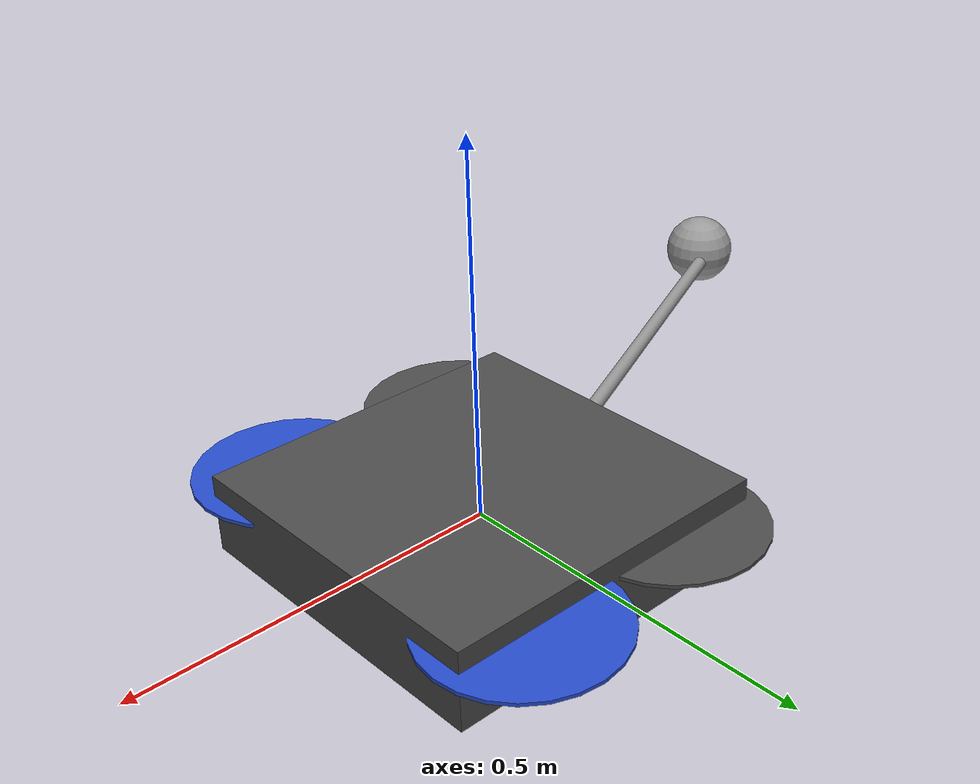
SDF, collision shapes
<?xml version='1.0'?>
<sdf version='1.6'>
  <model name='Iris_modified3'>
    <link name='base_link'>
      <pose frame=''>0 0 0 0 -0 0</pose>
      <inertial>
        <pose frame=''>0 0 0 0 -0 0</pose>
        <mass>1.5</mass>
        <inertia>
          <ixx>0.029125</ixx>
          <ixy>0</ixy>
          <ixz>0</ixz>
          <iyy>0.029125</iyy>
          <iyz>0</iyz>
          <izz>0.055225</izz>
        </inertia>
      </inertial>
      <gravity>1</gravity>
      <velocity_decay/>
      <self_collide>0</self_collide>
      <enable_wind>0</enable_wind>
      <kinematic>0</kinematic>
      <visual name='base_link_inertia_visual'>
        <pose frame=''>0 0 0 0 -0 0</pose>
        <geometry>
          <mesh>
            <scale>1 1 1</scale>
            <uri>model://rotors_description/meshes/iris.stl</uri>
          </mesh>
        </geometry>
        <material>
          <script>
            <name>Gazebo/DarkGrey</name>
            <uri>file://media/materials/scripts/gazebo.material</uri>
          </script>
          <shader type='pixel'/>
          <emissive>0 0 0 1</emissive>
        </material>
        <transparency>0</transparency>
        <cast_shadows>1</cast_shadows>
      </visual>
      <collision name='base_link_inertia_collision'>
        <laser_retro>0</laser_retro>
        <max_contacts>10</max_contacts>
        <pose frame=''>0 0 0 0 -0 0</pose>
        <geometry>
          <box>
            <size>0.47 0.47 0.11</size>
          </box>
        </geometry>
        <surface>
          <friction>
            <ode>
              <mu>1</mu>
              <mu2>1</mu2>
              <fdir1>0 0 0</fdir1>
              <slip1>0</slip1>
              <slip2>0</slip2>
            </ode>
            <torsional>
              <coefficient>1</coefficient>
              <patch_radius>0</patch_radius>
              <surface_radius>0</surface_radius>
              <use_patch_radius>1</use_patch_radius>
              <ode>
                <slip>0</slip>
              </ode>
            </torsional>
          </friction>
          <bounce>
            <restitution_coefficient>0</restitution_coefficient>
            <threshold>1e+06</threshold>
          </bounce>
          <contact>
            <collide_without_contact>0</collide_without_contact>
            <collide_without_contact_bitmask>1</collide_without_contact_bitmask>
            <collide_bitmask>1</collide_bitmask>
            <ode>
              <soft_cfm>0</soft_cfm>
              <soft_erp>0.2</soft_erp>
              <kp>1e+13</kp>
              <kd>1</kd>
              <max_vel>0</max_vel>
              <min_depth>0.001</min_depth>
            </ode>
            <bullet>
              <split_impulse>1</split_impulse>
              <split_impulse_penetration_threshold>-0.01</split_impulse_penetration_threshold>
              <soft_cfm>0</soft_cfm>
              <soft_erp>0.2</soft_erp>
              <kp>1e+13</kp>
              <kd>1</kd>
            </bullet>
          </contact>
        </surface>
      </collision>
    </link>
    <link name='/imu_link'>
      <pose frame=''>0 0 0 0 -0 0</pose>
      <inertial>
        <pose frame=''>0 0 0 0 -0 0</pose>
        <mass>0.015</mass>
        <inertia>
          <ixx>1e-05</ixx>
          <ixy>0</ixy>
          <ixz>0</ixz>
          <iyy>1e-05</iyy>
          <iyz>0</iyz>
          <izz>1e-05</izz>
        </inertia>
      </inertial>
      <self_collide>0</self_collide>
      <enable_wind>0</enable_wind>
      <kinematic>0</kinematic>
    </link>
    <link name='link_0'>
      <inertial>
        <mass>0.000544108</mass>
        <inertia>
          <ixx>4.53608e-05</ixx>
          <ixy>0</ixy>
          <ixz>0</ixz>
          <iyy>4.53608e-05</iyy>
          <iyz>0</iyz>
          <izz>3.69429e-08</izz>
        </inertia>
        <pose frame=''>0 0 0 0 -0 0</pose>
      </inertial>
      <pose frame=''>-0.465305 -0.222957 -0.0836 -1.56756 -0.000351 -1.14</pose>
      <self_collide>0</self_collide>
      <enable_wind>0</enable_wind>
      <kinematic>0</kinematic>
      <visual name='visual'>
        <pose frame=''>0 0 0 0 -0 0</pose>
        <geometry>
          <cylinder>
            <radius>0.0116529</radius>
            <length>1</length>
          </cylinder>
        </geometry>
        <material>
          <lighting>1</lighting>
          <script>
            <uri>file://media/materials/scripts/gazebo.material</uri>
            <name>Gazebo/Grey</name>
          </script>
          <shader type='pixel'/>
          <emissive>0 0 0 1</emissive>
        </material>
        <transparency>0</transparency>
        <cast_shadows>1</cast_shadows>
      </visual>
      <collision name='collision'>
        <laser_retro>0</laser_retro>
        <max_contacts>10</max_contacts>
        <pose frame=''>0 0 0 0 -0 0</pose>
        <geometry>
          <cylinder>
            <radius>0.011653</radius>
            <length>1</length>
          </cylinder>
        </geometry>
        <surface>
          <friction>
            <ode>
              <mu>1</mu>
              <mu2>1</mu2>
              <fdir1>0 0 0</fdir1>
              <slip1>0</slip1>
              <slip2>0</slip2>
            </ode>
            <torsional>
              <coefficient>1</coefficient>
              <patch_radius>0</patch_radius>
              <surface_radius>0</surface_radius>
              <use_patch_radius>1</use_patch_radius>
              <ode>
                <slip>0</slip>
              </ode>
            </torsional>
          </friction>
          <bounce>
            <restitution_coefficient>0</restitution_coefficient>
            <threshold>1e+06</threshold>
          </bounce>
          <contact>
            <collide_without_contact>0</collide_without_contact>
            <collide_without_contact_bitmask>1</collide_without_contact_bitmask>
            <collide_bitmask>1</collide_bitmask>
            <ode>
              <soft_cfm>0</soft_cfm>
              <soft_erp>0.2</soft_erp>
              <kp>1e+13</kp>
              <kd>1</kd>
              <max_vel>0.01</max_vel>
              <min_depth>0</min_depth>
            </ode>
            <bullet>
              <split_impulse>1</split_impulse>
              <split_impulse_penetration_threshold>-0.01</split_impulse_penetration_threshold>
              <soft_cfm>0</soft_cfm>
              <soft_erp>0.2</soft_erp>
              <kp>1e+13</kp>
              <kd>1</kd>
            </bullet>
          </contact>
        </surface>
      </collision>
    </link>
    <link name='link_0_0'>
      <inertial>
        <mass>1</mass>
        <inertia>
          <ixx>2.79074e-06</ixx>
          <ixy>0</ixy>
          <ixz>0</ixz>
          <iyy>2.79074e-06</iyy>
          <iyz>0</iyz>
          <izz>2.79074e-06</izz>
        </inertia>
        <pose frame=''>0 0 0 0 -0 0</pose>
      </inertial>
      <pose frame=''>-0.967895 -0.474964 -0.083915 0.001829 -0.000841 -1.14</pose>
      <visual name='visual'>
        <pose frame=''>0 0 0 0 -0 0</pose>
        <geometry>
          <sphere>
            <radius>0.0613939</radius>
          </sphere>
        </geometry>
        <material>
          <lighting>1</lighting>
          <script>
            <uri>file://media/materials/scripts/gazebo.material</uri>
            <name>Gazebo/Grey</name>
          </script>
          <shader type='pixel'/>
          <emissive>0 0 0 1</emissive>
        </material>
        <transparency>0</transparency>
        <cast_shadows>1</cast_shadows>
      </visual>
      <collision name='collision'>
        <laser_retro>0</laser_retro>
        <max_contacts>10</max_contacts>
        <pose frame=''>0 0 0 0 -0 0</pose>
        <geometry>
          <sphere>
            <radius>0.061394</radius>
          </sphere>
        </geometry>
        <surface>
          <friction>
            <ode>
              <mu>1</mu>
              <mu2>1</mu2>
              <fdir1>0 0 0</fdir1>
              <slip1>0</slip1>
              <slip2>0</slip2>
            </ode>
            <torsional>
              <coefficient>1</coefficient>
              <patch_radius>0</patch_radius>
              <surface_radius>0</surface_radius>
              <use_patch_radius>1</use_patch_radius>
              <ode>
                <slip>0</slip>
              </ode>
            </torsional>
          </friction>
          <bounce>
            <restitution_coefficient>0</restitution_coefficient>
            <threshold>1e+06</threshold>
          </bounce>
          <contact>
            <collide_without_contact>0</collide_without_contact>
            <collide_without_contact_bitmask>1</collide_without_contact_bitmask>
            <collide_bitmask>1</collide_bitmask>
            <ode>
              <soft_cfm>0</soft_cfm>
              <soft_erp>0.2</soft_erp>
              <kp>1e+13</kp>
              <kd>1</kd>
              <max_vel>0.01</max_vel>
              <min_depth>0</min_depth>
            </ode>
            <bullet>
              <split_impulse>1</split_impulse>
              <split_impulse_penetration_threshold>-0.01</split_impulse_penetration_threshold>
              <soft_cfm>0</soft_cfm>
              <soft_erp>0.2</soft_erp>
              <kp>1e+13</kp>
              <kd>1</kd>
            </bullet>
          </contact>
        </surface>
      </collision>
    </link>
    <link name='rotor_0'>
      <pose frame=''>0.13 -0.22 0.023 0 -0 0</pose>
      <inertial>
        <pose frame=''>0 0 0 0 -0 0</pose>
        <mass>0.005</mass>
        <inertia>
          <ixx>9.75e-07</ixx>
          <ixy>0</ixy>
          <ixz>0</ixz>
          <iyy>0.000273104</iyy>
          <iyz>0</iyz>
          <izz>0.000274004</izz>
        </inertia>
      </inertial>
      <gravity>1</gravity>
      <velocity_decay/>
      <self_collide>0</self_collide>
      <enable_wind>0</enable_wind>
      <kinematic>0</kinematic>
      <visual name='rotor_0_visual'>
        <pose frame=''>0 0 0 0 -0 0</pose>
        <geometry>
          <mesh>
            <scale>1 1 1</scale>
            <uri>model://rotors_description/meshes/iris_prop_ccw.dae</uri>
          </mesh>
        </geometry>
        <material>
          <script>
            <name>Gazebo/Blue</name>
            <uri>file://media/materials/scripts/gazebo.material</uri>
          </script>
          <shader type='pixel'/>
        </material>
        <transparency>0</transparency>
        <cast_shadows>1</cast_shadows>
      </visual>
      <collision name='rotor_0_collision'>
        <laser_retro>0</laser_retro>
        <max_contacts>10</max_contacts>
        <pose frame=''>0 0 0 0 -0 0</pose>
        <geometry>
          <cylinder>
            <radius>0.128</radius>
            <length>0.005</length>
          </cylinder>
        </geometry>
        <surface>
          <friction>
            <ode>
              <mu>1</mu>
              <mu2>1</mu2>
              <fdir1>0 0 0</fdir1>
              <slip1>0</slip1>
              <slip2>0</slip2>
            </ode>
            <torsional>
              <coefficient>1</coefficient>
              <patch_radius>0</patch_radius>
              <surface_radius>0</surface_radius>
              <use_patch_radius>1</use_patch_radius>
              <ode>
                <slip>0</slip>
              </ode>
            </torsional>
          </friction>
          <bounce>
            <restitution_coefficient>0</restitution_coefficient>
            <threshold>1e+06</threshold>
          </bounce>
          <contact>
            <collide_without_contact>0</collide_without_contact>
            <collide_without_contact_bitmask>1</collide_without_contact_bitmask>
            <collide_bitmask>1</collide_bitmask>
            <ode>
              <soft_cfm>0</soft_cfm>
              <soft_erp>0.2</soft_erp>
              <kp>1e+13</kp>
              <kd>1</kd>
              <max_vel>0.01</max_vel>
              <min_depth>0</min_depth>
            </ode>
            <bullet>
              <split_impulse>1</split_impulse>
              <split_impulse_penetration_threshold>-0.01</split_impulse_penetration_threshold>
              <soft_cfm>0</soft_cfm>
              <soft_erp>0.2</soft_erp>
              <kp>1e+13</kp>
              <kd>1</kd>
            </bullet>
          </contact>
        </surface>
      </collision>
    </link>
    <link name='rotor_1'>
      <pose frame=''>-0.13 0.2 0.023 0 -0 0</pose>
      <inertial>
        <pose frame=''>0 0 0 0 -0 0</pose>
        <mass>0.005</mass>
        <inertia>
          <ixx>9.75e-07</ixx>
          <ixy>0</ixy>
          <ixz>0</ixz>
          <iyy>0.000273104</iyy>
          <iyz>0</iyz>
          <izz>0.000274004</izz>
        </inertia>
      </inertial>
      <gravity>1</gravity>
      <velocity_decay/>
      <self_collide>0</self_collide>
      <enable_wind>0</enable_wind>
      <kinematic>0</kinematic>
      <visual name='rotor_1_visual'>
        <pose frame=''>0 0 0 0 -0 0</pose>
        <geometry>
          <mesh>
            <scale>1 1 1</scale>
            <uri>model://rotors_description/meshes/iris_prop_ccw.dae</uri>
          </mesh>
        </geometry>
        <material>
          <script>
            <name>Gazebo/DarkGrey</name>
            <uri>file://media/materials/scripts/gazebo.material</uri>
          </script>
          <shader type='pixel'/>
        </material>
        <transparency>0</transparency>
        <cast_shadows>1</cast_shadows>
      </visual>
      <collision name='rotor_1_collision'>
        <laser_retro>0</laser_retro>
        <max_contacts>10</max_contacts>
        <pose frame=''>0 0 0 0 -0 0</pose>
        <geometry>
          <cylinder>
            <radius>0.128</radius>
            <length>0.005</length>
          </cylinder>
        </geometry>
        <surface>
          <friction>
            <ode>
              <mu>1</mu>
              <mu2>1</mu2>
              <fdir1>0 0 0</fdir1>
              <slip1>0</slip1>
              <slip2>0</slip2>
            </ode>
            <torsional>
              <coefficient>1</coefficient>
              <patch_radius>0</patch_radius>
              <surface_radius>0</surface_radius>
              <use_patch_radius>1</use_patch_radius>
              <ode>
                <slip>0</slip>
              </ode>
            </torsional>
          </friction>
          <bounce>
            <restitution_coefficient>0</restitution_coefficient>
            <threshold>1e+06</threshold>
          </bounce>
          <contact>
            <collide_without_contact>0</collide_without_contact>
            <collide_without_contact_bitmask>1</collide_without_contact_bitmask>
            <collide_bitmask>1</collide_bitmask>
            <ode>
              <soft_cfm>0</soft_cfm>
              <soft_erp>0.2</soft_erp>
              <kp>1e+13</kp>
              <kd>1</kd>
              <max_vel>0.01</max_vel>
              <min_depth>0</min_depth>
            </ode>
            <bullet>
              <split_impulse>1</split_impulse>
              <split_impulse_penetration_threshold>-0.01</split_impulse_penetration_threshold>
              <soft_cfm>0</soft_cfm>
              <soft_erp>0.2</soft_erp>
              <kp>1e+13</kp>
              <kd>1</kd>
            </bullet>
          </contact>
        </surface>
      </collision>
    </link>
    <link name='rotor_2'>
      <pose frame=''>0.13 0.22 0.023 0 -0 0</pose>
      <inertial>
        <pose frame=''>0 0 0 0 -0 0</pose>
        <mass>0.005</mass>
        <inertia>
          <ixx>9.75e-07</ixx>
          <ixy>0</ixy>
          <ixz>0</ixz>
          <iyy>0.000273104</iyy>
          <iyz>0</iyz>
          <izz>0.000274004</izz>
        </inertia>
      </inertial>
      <gravity>1</gravity>
      <velocity_decay/>
      <self_collide>0</self_collide>
      <enable_wind>0</enable_wind>
      <kinematic>0</kinematic>
      <visual name='rotor_2_visual'>
        <pose frame=''>0 0 0 0 -0 0</pose>
        <geometry>
          <mesh>
            <scale>1 1 1</scale>
            <uri>model://rotors_description/meshes/iris_prop_cw.dae</uri>
          </mesh>
        </geometry>
        <material>
          <script>
            <name>Gazebo/Blue</name>
            <uri>file://media/materials/scripts/gazebo.material</uri>
          </script>
          <shader type='pixel'/>
        </material>
        <transparency>0</transparency>
        <cast_shadows>1</cast_shadows>
      </visual>
      <collision name='rotor_2_collision'>
        <laser_retro>0</laser_retro>
        <max_contacts>10</max_contacts>
        <pose frame=''>0 0 0 0 -0 0</pose>
        <geometry>
          <cylinder>
            <radius>0.128</radius>
            <length>0.005</length>
          </cylinder>
        </geometry>
        <surface>
          <friction>
            <ode>
              <mu>1</mu>
              <mu2>1</mu2>
              <fdir1>0 0 0</fdir1>
              <slip1>0</slip1>
              <slip2>0</slip2>
            </ode>
            <torsional>
              <coefficient>1</coefficient>
              <patch_radius>0</patch_radius>
              <surface_radius>0</surface_radius>
              <use_patch_radius>1</use_patch_radius>
              <ode>
                <slip>0</slip>
              </ode>
            </torsional>
          </friction>
          <bounce>
            <restitution_coefficient>0</restitution_coefficient>
            <threshold>1e+06</threshold>
          </bounce>
          <contact>
            <collide_without_contact>0</collide_without_contact>
            <collide_without_contact_bitmask>1</collide_without_contact_bitmask>
            <collide_bitmask>1</collide_bitmask>
            <ode>
              <soft_cfm>0</soft_cfm>
              <soft_erp>0.2</soft_erp>
              <kp>1e+13</kp>
              <kd>1</kd>
              <max_vel>0.01</max_vel>
              <min_depth>0</min_depth>
            </ode>
            <bullet>
              <split_impulse>1</split_impulse>
              <split_impulse_penetration_threshold>-0.01</split_impulse_penetration_threshold>
              <soft_cfm>0</soft_cfm>
              <soft_erp>0.2</soft_erp>
              <kp>1e+13</kp>
              <kd>1</kd>
            </bullet>
          </contact>
        </surface>
      </collision>
    </link>
    <link name='rotor_3'>
      <pose frame=''>-0.13 -0.2 0.023 0 -0 0</pose>
      <inertial>
        <pose frame=''>0 0 0 0 -0 0</pose>
        <mass>0.005</mass>
        <inertia>
          <ixx>9.75e-07</ixx>
          <ixy>0</ixy>
          <ixz>0</ixz>
          <iyy>0.000273104</iyy>
          <iyz>0</iyz>
          <izz>0.000274004</izz>
        </inertia>
      </inertial>
      <gravity>1</gravity>
      <velocity_decay/>
      <self_collide>0</self_collide>
      <enable_wind>0</enable_wind>
      <kinematic>0</kinematic>
      <visual name='rotor_3_visual'>
        <pose frame=''>0 0 0 0 -0 0</pose>
        <geometry>
          <mesh>
            <scale>1 1 1</scale>
            <uri>model://rotors_description/meshes/iris_prop_cw.dae</uri>
          </mesh>
        </geometry>
        <material>
          <script>
            <name>Gazebo/DarkGrey</name>
            <uri>file://media/materials/scripts/gazebo.material</uri>
          </script>
          <shader type='pixel'/>
          <emissive>0 0 0 1</emissive>
        </material>
        <transparency>0</transparency>
        <cast_shadows>1</cast_shadows>
      </visual>
      <collision name='rotor_3_collision'>
        <laser_retro>0</laser_retro>
        <max_contacts>10</max_contacts>
        <pose frame=''>0 0 0 0 -0 0</pose>
        <geometry>
          <cylinder>
            <radius>0.128</radius>
            <length>0.005</length>
          </cylinder>
        </geometry>
        <surface>
          <friction>
            <ode>
              <mu>1</mu>
              <mu2>1</mu2>
              <fdir1>0 0 0</fdir1>
              <slip1>0</slip1>
              <slip2>0</slip2>
            </ode>
            <torsional>
              <coefficient>1</coefficient>
              <patch_radius>0</patch_radius>
              <surface_radius>0</surface_radius>
              <use_patch_radius>1</use_patch_radius>
              <ode>
                <slip>0</slip>
              </ode>
            </torsional>
          </friction>
          <bounce>
            <restitution_coefficient>0</restitution_coefficient>
            <threshold>1e+06</threshold>
          </bounce>
          <contact>
            <collide_without_contact>0</collide_without_contact>
            <collide_without_contact_bitmask>1</collide_without_contact_bitmask>
            <collide_bitmask>1</collide_bitmask>
            <ode>
              <soft_cfm>0</soft_cfm>
              <soft_erp>0.2</soft_erp>
              <kp>1e+13</kp>
              <kd>1</kd>
              <max_vel>0.01</max_vel>
              <min_depth>0</min_depth>
            </ode>
            <bullet>
              <split_impulse>1</split_impulse>
              <split_impulse_penetration_threshold>-0.01</split_impulse_penetration_threshold>
              <soft_cfm>0</soft_cfm>
              <soft_erp>0.2</soft_erp>
              <kp>1e+13</kp>
              <kd>1</kd>
            </bullet>
          </contact>
        </surface>
      </collision>
    </link>
    <joint name='/imu_joint' type='revolute'>
      <parent>base_link</parent>
      <child>/imu_link</child>
      <pose frame=''>0 0 0 0 -0 0</pose>
      <axis>
        <xyz>1 0 0</xyz>
        <use_parent_model_frame>1</use_parent_model_frame>
        <limit>
          <lower>0</lower>
          <upper>0</upper>
          <effort>0</effort>
          <velocity>0</velocity>
        </limit>
        <dynamics>
          <spring_reference>0</spring_reference>
          <spring_stiffness>0</spring_stiffness>
          <damping>0</damping>
          <friction>0</friction>
        </dynamics>
      </axis>
      <physics>
        <ode>
          <limit>
            <cfm>0</cfm>
            <erp>0.2</erp>
          </limit>
          <suspension>
            <cfm>0</cfm>
            <erp>0.2</erp>
          </suspension>
        </ode>
      </physics>
    </joint>
    <joint name='base_link_JOINT_0' type='universal'>
      <parent>base_link</parent>
      <child>link_0</child>
      <pose frame=''>0 0 0.49 0 -0 0</pose>
      <axis>
        <xyz>1 0 0</xyz>
        <use_parent_model_frame>0</use_parent_model_frame>
        <limit>
          <lower>-1.79769e+308</lower>
          <upper>1.79769e+308</upper>
          <effort>-1</effort>
          <velocity>-1</velocity>
        </limit>
        <dynamics>
          <spring_reference>0</spring_reference>
          <spring_stiffness>0</spring_stiffness>
          <damping>0</damping>
          <friction>0</friction>
        </dynamics>
      </axis>
      <axis2>
        <xyz>0 0 1</xyz>
        <use_parent_model_frame>0</use_parent_model_frame>
        <dynamics>
          <spring_reference>0</spring_reference>
          <spring_stiffness>0</spring_stiffness>
          <damping>0</damping>
          <friction>0</friction>
        </dynamics>
        <limit>
          <lower>-1e+16</lower>
          <upper>1e+16</upper>
          <effort>-1</effort>
          <velocity>-1</velocity>
        </limit>
      </axis2>
      <physics>
        <ode>
          <limit>
            <cfm>0</cfm>
            <erp>0.2</erp>
          </limit>
          <suspension>
            <cfm>0</cfm>
            <erp>0.2</erp>
          </suspension>
        </ode>
      </physics>
    </joint>
    <joint name='link_0_JOINT_1' type='revolute'>
      <parent>link_0</parent>
      <child>link_0_0</child>
      <pose frame=''>0 0 0 0 -0 0</pose>
      <axis>
        <xyz>1 0 0</xyz>
        <use_parent_model_frame>0</use_parent_model_frame>
        <limit>
          <lower>-1.79769e+308</lower>
          <upper>1.79769e+308</upper>
          <effort>-1</effort>
          <velocity>-1</velocity>
        </limit>
        <dynamics>
          <spring_reference>0</spring_reference>
          <spring_stiffness>0</spring_stiffness>
          <damping>0</damping>
        </dynamics>
      </axis>
      <physics>
        <ode>
          <limit>
            <cfm>0</cfm>
            <erp>0.2</erp>
          </limit>
          <suspension>
            <cfm>0</cfm>
            <erp>0.2</erp>
          </suspension>
        </ode>
      </physics>
    </joint>
    <joint name='rotor_0_joint' type='revolute'>
      <parent>base_link</parent>
      <child>rotor_0</child>
      <pose frame=''>0 0 0 0 -0 0</pose>
      <axis>
        <xyz>0 0 1</xyz>
        <use_parent_model_frame>1</use_parent_model_frame>
        <limit>
          <lower>-1e+16</lower>
          <upper>1e+16</upper>
          <effort>-1</effort>
          <velocity>-1</velocity>
        </limit>
        <dynamics>
          <spring_reference>0</spring_reference>
          <spring_stiffness>0</spring_stiffness>
          <damping>0</damping>
          <friction>0</friction>
        </dynamics>
      </axis>
      <physics>
        <ode>
          <limit>
            <cfm>0</cfm>
            <erp>0.2</erp>
          </limit>
          <suspension>
            <cfm>0</cfm>
            <erp>0.2</erp>
          </suspension>
        </ode>
      </physics>
    </joint>
    <joint name='rotor_1_joint' type='revolute'>
      <parent>base_link</parent>
      <child>rotor_1</child>
      <pose frame=''>0 0 0 0 -0 0</pose>
      <axis>
        <xyz>0 0 1</xyz>
        <use_parent_model_frame>1</use_parent_model_frame>
        <limit>
          <lower>-1e+16</lower>
          <upper>1e+16</upper>
          <effort>-1</effort>
          <velocity>-1</velocity>
        </limit>
        <dynamics>
          <spring_reference>0</spring_reference>
          <spring_stiffness>0</spring_stiffness>
          <damping>0</damping>
          <friction>0</friction>
        </dynamics>
      </axis>
      <physics>
        <ode>
          <limit>
            <cfm>0</cfm>
            <erp>0.2</erp>
          </limit>
          <suspension>
            <cfm>0</cfm>
            <erp>0.2</erp>
          </suspension>
        </ode>
      </physics>
    </joint>
    <joint name='rotor_2_joint' type='revolute'>
      <parent>base_link</parent>
      <child>rotor_2</child>
      <pose frame=''>0 0 0 0 -0 0</pose>
      <axis>
        <xyz>0 0 1</xyz>
        <use_parent_model_frame>1</use_parent_model_frame>
        <limit>
          <lower>-1e+16</lower>
          <upper>1e+16</upper>
          <effort>-1</effort>
          <velocity>-1</velocity>
        </limit>
        <dynamics>
          <spring_reference>0</spring_reference>
          <spring_stiffness>0</spring_stiffness>
          <damping>0</damping>
          <friction>0</friction>
        </dynamics>
      </axis>
      <physics>
        <ode>
          <limit>
            <cfm>0</cfm>
            <erp>0.2</erp>
          </limit>
          <suspension>
            <cfm>0</cfm>
            <erp>0.2</erp>
          </suspension>
        </ode>
      </physics>
    </joint>
    <joint name='rotor_3_joint' type='revolute'>
      <parent>base_link</parent>
      <child>rotor_3</child>
      <pose frame=''>0 0 0 0 -0 0</pose>
      <axis>
        <xyz>0 0 1</xyz>
        <use_parent_model_frame>1</use_parent_model_frame>
        <limit>
          <lower>-1e+16</lower>
          <upper>1e+16</upper>
          <effort>-1</effort>
          <velocity>-1</velocity>
        </limit>
        <dynamics>
          <spring_reference>0</spring_reference>
          <spring_stiffness>0</spring_stiffness>
          <damping>0</damping>
          <friction>0</friction>
        </dynamics>
      </axis>
      <physics>
        <ode>
          <limit>
            <cfm>0</cfm>
            <erp>0.2</erp>
          </limit>
          <suspension>
            <cfm>0</cfm>
            <erp>0.2</erp>
          </suspension>
        </ode>
      </physics>
    </joint>
    <static>0</static>
    <allow_auto_disable>1</allow_auto_disable>
    <plugin name='back_left_motor_model' filename='libgazebo_motor_model.so'>
      <robotNamespace/>
      <jointName>rotor_1_joint</jointName>
      <linkName>rotor_1</linkName>
      <turningDirection>ccw</turningDirection>
      <timeConstantUp>0.0125</timeConstantUp>
      <timeConstantDown>0.025</timeConstantDown>
      <maxRotVelocity>1100</maxRotVelocity>
      <motorConstant>8.54858e-06</motorConstant>
      <momentConstant>0.06</momentConstant>
      <commandSubTopic>/gazebo/command/motor_speed</commandSubTopic>
      <motorNumber>1</motorNumber>
      <rotorDragCoefficient>0.000806428</rotorDragCoefficient>
      <rollingMomentCoefficient>1e-06</rollingMomentCoefficient>
      <motorSpeedPubTopic>/motor_speed/1</motorSpeedPubTopic>
      <rotorVelocitySlowdownSim>10</rotorVelocitySlowdownSim>
    </plugin>
    <plugin name='back_right_motor_model' filename='libgazebo_motor_model.so'>
      <robotNamespace/>
      <jointName>rotor_3_joint</jointName>
      <linkName>rotor_3</linkName>
      <turningDirection>cw</turningDirection>
      <timeConstantUp>0.0125</timeConstantUp>
      <timeConstantDown>0.025</timeConstantDown>
      <maxRotVelocity>1100</maxRotVelocity>
      <motorConstant>8.54858e-06</motorConstant>
      <momentConstant>0.06</momentConstant>
      <commandSubTopic>/gazebo/command/motor_speed</commandSubTopic>
      <motorNumber>3</motorNumber>
      <rotorDragCoefficient>0.000806428</rotorDragCoefficient>
      <rollingMomentCoefficient>1e-06</rollingMomentCoefficient>
      <motorSpeedPubTopic>/motor_speed/3</motorSpeedPubTopic>
      <rotorVelocitySlowdownSim>10</rotorVelocitySlowdownSim>
    </plugin>
    <plugin name='barometer_plugin' filename='libgazebo_barometer_plugin.so'>
      <robotNamespace/>
      <pubRate>10</pubRate>
      <baroTopic>/baro</baroTopic>
    </plugin>
    <plugin name='front_left_motor_model' filename='libgazebo_motor_model.so'>
      <robotNamespace/>
      <jointName>rotor_2_joint</jointName>
      <linkName>rotor_2</linkName>
      <turningDirection>cw</turningDirection>
      <timeConstantUp>0.0125</timeConstantUp>
      <timeConstantDown>0.025</timeConstantDown>
      <maxRotVelocity>1100</maxRotVelocity>
      <motorConstant>8.54858e-06</motorConstant>
      <momentConstant>0.06</momentConstant>
      <commandSubTopic>/gazebo/command/motor_speed</commandSubTopic>
      <motorNumber>2</motorNumber>
      <rotorDragCoefficient>0.000806428</rotorDragCoefficient>
      <rollingMomentCoefficient>1e-06</rollingMomentCoefficient>
      <motorSpeedPubTopic>/motor_speed/2</motorSpeedPubTopic>
      <rotorVelocitySlowdownSim>10</rotorVelocitySlowdownSim>
    </plugin>
    <plugin name='front_right_motor_model' filename='libgazebo_motor_model.so'>
      <robotNamespace/>
      <jointName>rotor_0_joint</jointName>
      <linkName>rotor_0</linkName>
      <turningDirection>ccw</turningDirection>
      <timeConstantUp>0.0125</timeConstantUp>
      <timeConstantDown>0.025</timeConstantDown>
      <maxRotVelocity>1100</maxRotVelocity>
      <motorConstant>8.54858e-06</motorConstant>
      <momentConstant>0.06</momentConstant>
      <commandSubTopic>/gazebo/command/motor_speed</commandSubTopic>
      <motorNumber>0</motorNumber>
      <rotorDragCoefficient>0.000806428</rotorDragCoefficient>
      <rollingMomentCoefficient>1e-06</rollingMomentCoefficient>
      <motorSpeedPubTopic>/motor_speed/0</motorSpeedPubTopic>
      <rotorVelocitySlowdownSim>10</rotorVelocitySlowdownSim>
    </plugin>
    <plugin name='gps_plugin' filename='libgazebo_gps_plugin.so'>
      <robotNamespace/>
      <gpsNoise>1</gpsNoise>
    </plugin>
    <plugin name='magnetometer_plugin' filename='libgazebo_magnetometer_plugin.so'>
      <robotNamespace/>
      <pubRate>20</pubRate>
      <noiseDensity>0.0004</noiseDensity>
      <randomWalk>6.4e-06</randomWalk>
      <biasCorrelationTime>600</biasCorrelationTime>
      <magTopic>/mag</magTopic>
    </plugin>
    <plugin name='mavlink_interface' filename='libgazebo_mavlink_interface.so'>
      <robotNamespace/>
      <imuSubTopic>/imu</imuSubTopic>
      <gpsSubTopic>/gps</gpsSubTopic>
      <magSubTopic>/mag</magSubTopic>
      <baroSubTopic>/baro</baroSubTopic>
      <mavlink_addr>INADDR_ANY</mavlink_addr>
      <mavlink_udp_port>14560</mavlink_udp_port>
      <mavlink_tcp_port>4560</mavlink_tcp_port>
      <serialEnabled>0</serialEnabled>
      <serialDevice>/dev/ttyACM0</serialDevice>
      <baudRate>921600</baudRate>
      <qgc_addr>INADDR_ANY</qgc_addr>
      <qgc_udp_port>14550</qgc_udp_port>
      <sdk_addr>INADDR_ANY</sdk_addr>
      <sdk_udp_port>14540</sdk_udp_port>
      <hil_mode>0</hil_mode>
      <hil_state_level>0</hil_state_level>
      <vehicle_is_tailsitter>0</vehicle_is_tailsitter>
      <send_vision_estimation>1</send_vision_estimation>
      <send_odometry>0</send_odometry>
      <enable_lockstep>1</enable_lockstep>
      <use_tcp>1</use_tcp>
      <motorSpeedCommandPubTopic>/gazebo/command/motor_speed</motorSpeedCommandPubTopic>
      <control_channels>
        <channel name='rotor1'>
          <input_index>0</input_index>
          <input_offset>0</input_offset>
          <input_scaling>1000</input_scaling>
          <zero_position_disarmed>0</zero_position_disarmed>
          <zero_position_armed>100</zero_position_armed>
          <joint_control_type>velocity</joint_control_type>
        </channel>
        <channel name='rotor2'>
          <input_index>1</input_index>
          <input_offset>0</input_offset>
          <input_scaling>1000</input_scaling>
          <zero_position_disarmed>0</zero_position_disarmed>
          <zero_position_armed>100</zero_position_armed>
          <joint_control_type>velocity</joint_control_type>
        </channel>
        <channel name='rotor3'>
          <input_index>2</input_index>
          <input_offset>0</input_offset>
          <input_scaling>1000</input_scaling>
          <zero_position_disarmed>0</zero_position_disarmed>
          <zero_position_armed>100</zero_position_armed>
          <joint_control_type>velocity</joint_control_type>
        </channel>
        <channel name='rotor4'>
          <input_index>3</input_index>
          <input_offset>0</input_offset>
          <input_scaling>1000</input_scaling>
          <zero_position_disarmed>0</zero_position_disarmed>
          <zero_position_armed>100</zero_position_armed>
          <joint_control_type>velocity</joint_control_type>
        </channel>
        <channel name='rotor5'>
          <input_index>4</input_index>
          <input_offset>1</input_offset>
          <input_scaling>324.6</input_scaling>
          <zero_position_disarmed>0</zero_position_disarmed>
          <zero_position_armed>0</zero_position_armed>
          <joint_control_type>velocity</joint_control_type>
          <joint_control_pid>
            <p>0.1</p>
            <i>0</i>
            <d>0</d>
            <iMax>0.0</iMax>
            <iMin>0.0</iMin>
            <cmdMax>2</cmdMax>
            <cmdMin>-2</cmdMin>
          </joint_control_pid>
          <joint_name>zephyr_delta_wing::propeller_joint</joint_name>
        </channel>
        <channel name='rotor6'>
          <input_index>5</input_index>
          <input_offset>0</input_offset>
          <input_scaling>0.524</input_scaling>
          <zero_position_disarmed>0</zero_position_disarmed>
          <zero_position_armed>0</zero_position_armed>
          <joint_control_type>position</joint_control_type>
          <joint_name>zephyr_delta_wing::flap_left_joint</joint_name>
          <joint_control_pid>
            <p>10.0</p>
            <i>0</i>
            <d>0</d>
            <iMax>0</iMax>
            <iMin>0</iMin>
            <cmdMax>20</cmdMax>
            <cmdMin>-20</cmdMin>
          </joint_control_pid>
        </channel>
        <channel name='rotor7'>
          <input_index>6</input_index>
          <input_offset>0</input_offset>
          <input_scaling>0.524</input_scaling>
          <zero_position_disarmed>0</zero_position_disarmed>
          <zero_position_armed>0</zero_position_armed>
          <joint_control_type>position</joint_control_type>
          <joint_name>zephyr_delta_wing::flap_right_joint</joint_name>
          <joint_control_pid>
            <p>10.0</p>
            <i>0</i>
            <d>0</d>
            <iMax>0</iMax>
            <iMin>0</iMin>
            <cmdMax>20</cmdMax>
            <cmdMin>-20</cmdMin>
          </joint_control_pid>
        </channel>
        <channel name='rotor8'>
          <input_index>7</input_index>
          <input_offset>0</input_offset>
          <input_scaling>0.524</input_scaling>
          <zero_position_disarmed>0</zero_position_disarmed>
          <zero_position_armed>0</zero_position_armed>
          <joint_control_type>position</joint_control_type>
        </channel>
      </control_channels>
    </plugin>
    <plugin name='rosbag' filename='libgazebo_multirotor_base_plugin.so'>
      <robotNamespace/>
      <linkName>base_link</linkName>
      <rotorVelocitySlowdownSim>10</rotorVelocitySlowdownSim>
    </plugin>
    <plugin name='rotors_gazebo_imu_plugin' filename='libgazebo_imu_plugin.so'>
      <robotNamespace/>
      <linkName>/imu_link</linkName>
      <imuTopic>/imu</imuTopic>
      <gyroscopeNoiseDensity>0.0003394</gyroscopeNoiseDensity>
      <gyroscopeRandomWalk>3.8785e-05</gyroscopeRandomWalk>
      <gyroscopeBiasCorrelationTime>1000.0</gyroscopeBiasCorrelationTime>
      <gyroscopeTurnOnBiasSigma>0.0087</gyroscopeTurnOnBiasSigma>
      <accelerometerNoiseDensity>0.004</accelerometerNoiseDensity>
      <accelerometerRandomWalk>0.006</accelerometerRandomWalk>
      <accelerometerBiasCorrelationTime>300.0</accelerometerBiasCorrelationTime>
      <accelerometerTurnOnBiasSigma>0.196</accelerometerTurnOnBiasSigma>
    </plugin>
  </model>
</sdf>
